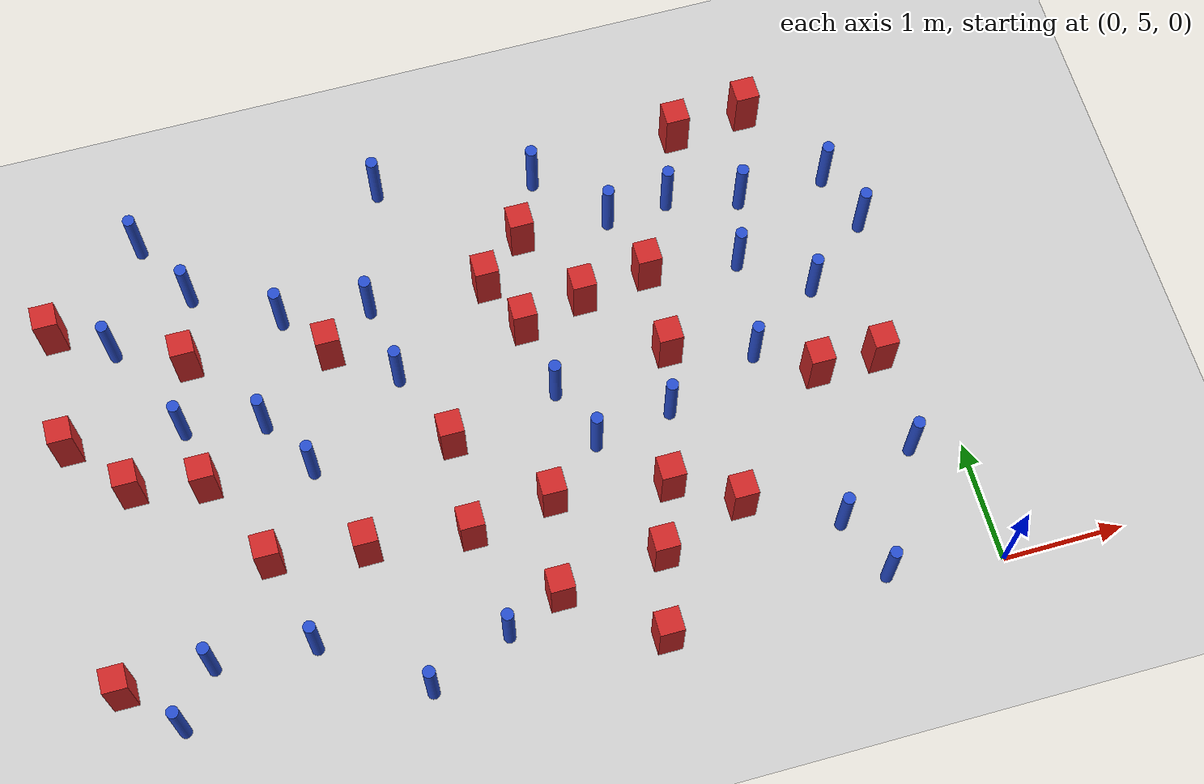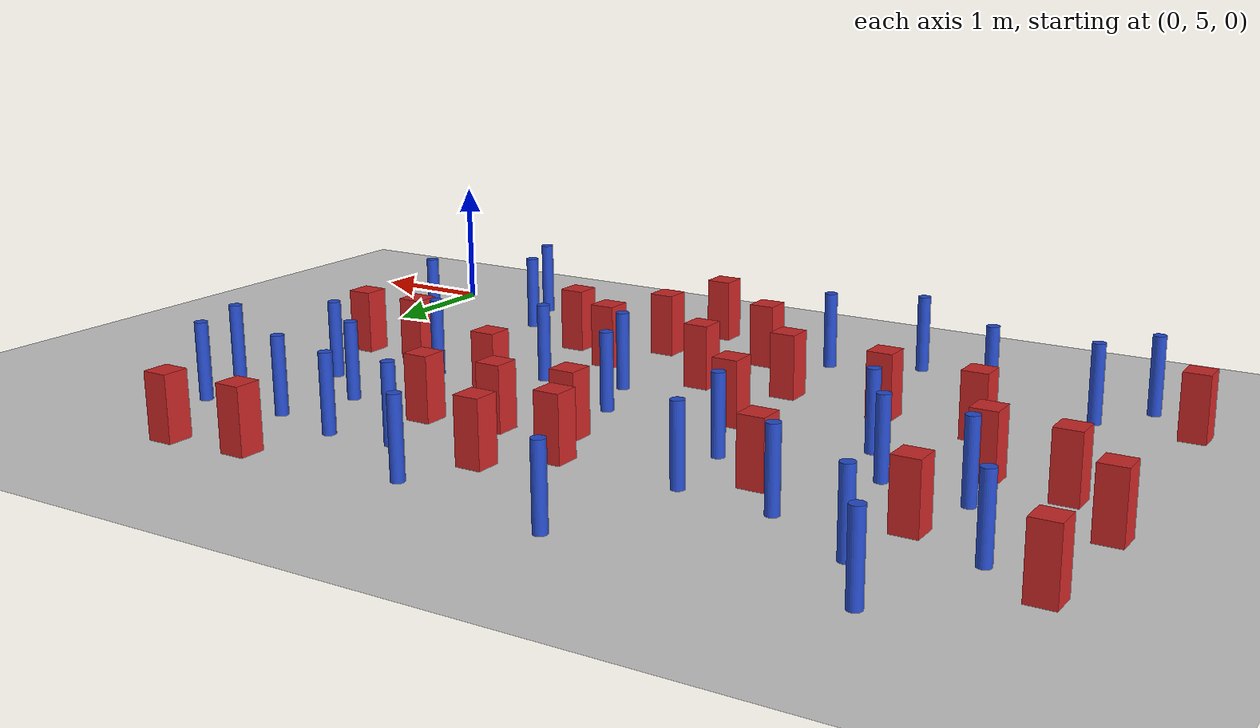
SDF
<sdf version="1.6">
 <world name="default">
  <model name="ground_plane">
   <static>1</static>
   <link name="link">
    <collision name="collision">
     <geometry><plane><normal>0 0 1</normal><size>100 100</size></plane></geometry>
     <surface><friction><ode><mu>100</mu><mu2>50</mu2></ode></friction></surface>
    </collision>
    <visual name="visual">
     <cast_shadows>0</cast_shadows>
     <geometry><plane><normal>0 0 1</normal><size>100 100</size></plane></geometry>
     <material>
      <ambient>1.0 1.0 1.0 1.0</ambient>
      <diffuse>0.8 0.8 0.8 1.0</diffuse>
      <specular>0.01 0.01 0.01 1.000000</specular>
     </material>
    </visual>
   </link>
  </model>
  <model name="square_post_obstacle1">
   <static>true</static>
   <pose>-5.60248485421 6.4889350293 1.91545236811e-07 -7.35059704564e-06 1.12565212e-07 2.39332434364e-05</pose>
   <link name="link">
    <pose>0 0 0.25 0 -0 0</pose>
    <inertial>
     <mass>100</mass>
     <inertia>
      <ixx>0.166667</ixx>
      <ixy>0</ixy>
      <ixz>0</ixz>
      <iyy>0.166667</iyy>
      <iyz>0</iyz>
      <izz>0.166667</izz>
     </inertia>
    </inertial>
    <collision name="collision"><geometry><box><size>.2 .2 .5</size></box></geometry></collision>
    <visual name="visual">
     <geometry><box><size>.2 .2 .5</size></box></geometry>
     <material>
      <script><name>Gazebo/Red</name><uri>file://media/materials/scripts/gazebo.material</uri></script>
     </material>
    </visual>
   </link>
  </model>
  <model name="pole_obstacle12">
   <static>true</static>
   <pose>-0.427760057197 6.07266517939 7.38925637345e-09 -8.471706928e-08 1.24976765079e-08 -1.74513093015e-07</pose>
   <link name="link">
    <pose>0 0 0.3 0 -0 0</pose>
    <inertial>
     <mass>1</mass>
     <inertia><ixx>0.145833</ixx><ixy>0</ixy><ixz>0</ixz><iyy>0.145833</iyy><iyz>0</iyz><izz>0.125</izz></inertia>
    </inertial>
    <collision name="collision">
     <geometry><cylinder><radius>0.05</radius><length>.6</length></cylinder></geometry>
    </collision>
    <visual name="visual">
     <geometry><cylinder><radius>0.05</radius><length>.6</length></cylinder></geometry>
     <material>
      <script><name>Gazebo/Blue</name><uri>file://media/materials/scripts/gazebo.material</uri></script>
     </material>
    </visual>
   </link>
  </model>
  <model name="square_post_obstacle27">
   <static>true</static>
   <pose>-3.32738703445 6.39974944797 1.91545236811e-07 -7.35059704564e-06 1.12565212e-07 2.39332434364e-05</pose>
   <link name="link">
    <pose>0 0 0.25 0 -0 0</pose>
    <inertial>
     <mass>100</mass>
     <inertia>
      <ixx>0.166667</ixx>
      <ixy>0</ixy>
      <ixz>0</ixz>
      <iyy>0.166667</iyy>
      <iyz>0</iyz>
      <izz>0.166667</izz>
     </inertia>
    </inertial>
    <collision name="collision"><geometry><box><size>.2 .2 .5</size></box></geometry></collision>
    <visual name="visual">
     <geometry><box><size>.2 .2 .5</size></box></geometry>
     <material>
      <script><name>Gazebo/Red</name><uri>file://media/materials/scripts/gazebo.material</uri></script>
     </material>
    </visual>
   </link>
  </model>
  <model name="pole_obstacle18">
   <static>true</static>
   <pose>-1.69189626377 8.75768709461 7.38925637345e-09 -8.47170692798e-08 1.24976764881e-08 -1.74513093027e-07</pose>
   <link name="link">
    <pose>0 0 0.3 0 -0 0</pose>
    <inertial>
     <mass>1</mass>
     <inertia><ixx>0.145833</ixx><ixy>0</ixy><ixz>0</ixz><iyy>0.145833</iyy><iyz>0</iyz><izz>0.125</izz></inertia>
    </inertial>
    <collision name="collision">
     <geometry><cylinder><radius>0.05</radius><length>.6</length></cylinder></geometry>
    </collision>
    <visual name="visual">
     <geometry><cylinder><radius>0.05</radius><length>.6</length></cylinder></geometry>
     <material>
      <script><name>Gazebo/Blue</name><uri>file://media/materials/scripts/gazebo.material</uri></script>
     </material>
    </visual>
   </link>
  </model>
  <model name="square_post_obstacle31">
   <static>true</static>
   <pose>-6.91362823804 5.74770904784 1.91545236811e-07 -7.35059704564e-06 1.12565212e-07 2.39332434364e-05</pose>
   <link name="link">
    <pose>0 0 0.25 0 -0 0</pose>
    <inertial>
     <mass>100</mass>
     <inertia>
      <ixx>0.166667</ixx>
      <ixy>0</ixy>
      <ixz>0</ixz>
      <iyy>0.166667</iyy>
      <iyz>0</iyz>
      <izz>0.166667</izz>
     </inertia>
    </inertial>
    <collision name="collision"><geometry><box><size>.2 .2 .5</size></box></geometry></collision>
    <visual name="visual">
     <geometry><box><size>.2 .2 .5</size></box></geometry>
     <material>
      <script><name>Gazebo/Red</name><uri>file://media/materials/scripts/gazebo.material</uri></script>
     </material>
    </visual>
   </link>
  </model>
  <model name="pole_obstacle24">
   <static>true</static>
   <pose>-5.39968292794 7.64356873733 7.38925637345e-09 -8.47170692796e-08 1.24976764786e-08 -1.74513093032e-07</pose>
   <link name="link">
    <pose>0 0 0.3 0 -0 0</pose>
    <inertial>
     <mass>1</mass>
     <inertia><ixx>0.145833</ixx><ixy>0</ixy><ixz>0</ixz><iyy>0.145833</iyy><iyz>0</iyz><izz>0.125</izz></inertia>
    </inertial>
    <collision name="collision">
     <geometry><cylinder><radius>0.05</radius><length>.6</length></cylinder></geometry>
    </collision>
    <visual name="visual">
     <geometry><cylinder><radius>0.05</radius><length>.6</length></cylinder></geometry>
     <material>
      <script><name>Gazebo/Blue</name><uri>file://media/materials/scripts/gazebo.material</uri></script>
     </material>
    </visual>
   </link>
  </model>
  <model name="pole_obstacle26">
   <static>true</static>
   <pose>-4.34834939182 8.43288641713 7.38925637345e-09 -8.471706928e-08 1.24976765081e-08 -1.74513093015e-07</pose>
   <link name="link">
    <pose>0 0 0.3 0 -0 0</pose>
    <inertial>
     <mass>1</mass>
     <inertia><ixx>0.145833</ixx><ixy>0</ixy><ixz>0</ixz><iyy>0.145833</iyy><iyz>0</iyz><izz>0.125</izz></inertia>
    </inertial>
    <collision name="collision">
     <geometry><cylinder><radius>0.05</radius><length>.6</length></cylinder></geometry>
    </collision>
    <visual name="visual">
     <geometry><cylinder><radius>0.05</radius><length>.6</length></cylinder></geometry>
     <material>
      <script><name>Gazebo/Blue</name><uri>file://media/materials/scripts/gazebo.material</uri></script>
     </material>
    </visual>
   </link>
  </model>
  <model name="square_post_obstacle36">
   <static>true</static>
   <pose>-2.07902770897 7.41287740161 1.91545236811e-07 -7.35059704564e-06 1.12565212e-07 2.39332434364e-05</pose>
   <link name="link">
    <pose>0 0 0.25 0 -0 0</pose>
    <inertial>
     <mass>100</mass>
     <inertia>
      <ixx>0.166667</ixx>
      <ixy>0</ixy>
      <ixz>0</ixz>
      <iyy>0.166667</iyy>
      <iyz>0</iyz>
      <izz>0.166667</izz>
     </inertia>
    </inertial>
    <collision name="collision"><geometry><box><size>.2 .2 .5</size></box></geometry></collision>
    <visual name="visual">
     <geometry><box><size>.2 .2 .5</size></box></geometry>
     <material>
      <script><name>Gazebo/Red</name><uri>file://media/materials/scripts/gazebo.material</uri></script>
     </material>
    </visual>
   </link>
  </model>
  <model name="square_post_obstacle55">
   <static>true</static>
   <pose>-4.75509551866 8.12704016325 1.91545236811e-07 -7.35059704564e-06 1.12565212e-07 2.39332434364e-05</pose>
   <link name="link">
    <pose>0 0 0.25 0 -0 0</pose>
    <inertial>
     <mass>100</mass>
     <inertia>
      <ixx>0.166667</ixx>
      <ixy>0</ixy>
      <ixz>0</ixz>
      <iyy>0.166667</iyy>
      <iyz>0</iyz>
      <izz>0.166667</izz>
     </inertia>
    </inertial>
    <collision name="collision"><geometry><box><size>.2 .2 .5</size></box></geometry></collision>
    <visual name="visual">
     <geometry><box><size>.2 .2 .5</size></box></geometry>
     <material>
      <script><name>Gazebo/Red</name><uri>file://media/materials/scripts/gazebo.material</uri></script>
     </material>
    </visual>
   </link>
  </model>
  <model name="pole_obstacle53">
   <static>true</static>
   <pose>-4.26027337392 7.76566736631 7.38925637345e-09 -8.47170692796e-08 1.24976764786e-08 -1.74513093032e-07</pose>
   <link name="link">
    <pose>0 0 0.3 0 -0 0</pose>
    <inertial>
     <mass>1</mass>
     <inertia><ixx>0.145833</ixx><ixy>0</ixy><ixz>0</ixz><iyy>0.145833</iyy><iyz>0</iyz><izz>0.125</izz></inertia>
    </inertial>
    <collision name="collision">
     <geometry><cylinder><radius>0.05</radius><length>.6</length></cylinder></geometry>
    </collision>
    <visual name="visual">
     <geometry><cylinder><radius>0.05</radius><length>.6</length></cylinder></geometry>
     <material>
      <script><name>Gazebo/Blue</name><uri>file://media/materials/scripts/gazebo.material</uri></script>
     </material>
    </visual>
   </link>
  </model>
  <model name="pole_obstacle54">
   <static>true</static>
   <pose>-1.27567156155 8.04483895308 7.38925637345e-09 -8.471706928e-08 1.24976765113e-08 -1.74513093014e-07</pose>
   <link name="link">
    <pose>0 0 0.3 0 -0 0</pose>
    <inertial>
     <mass>1</mass>
     <inertia><ixx>0.145833</ixx><ixy>0</ixy><ixz>0</ixz><iyy>0.145833</iyy><iyz>0</iyz><izz>0.125</izz></inertia>
    </inertial>
    <collision name="collision">
     <geometry><cylinder><radius>0.05</radius><length>.6</length></cylinder></geometry>
    </collision>
    <visual name="visual">
     <geometry><cylinder><radius>0.05</radius><length>.6</length></cylinder></geometry>
     <material>
      <script><name>Gazebo/Blue</name><uri>file://media/materials/scripts/gazebo.material</uri></script>
     </material>
    </visual>
   </link>
  </model>
  <model name="square_post_obstacle58">
   <static>true</static>
   <pose>-4.84282711042 6.38325821089 1.91545236811e-07 -7.35059704564e-06 1.12565212e-07 2.39332434364e-05</pose>
   <link name="link">
    <pose>0 0 0.25 0 -0 0</pose>
    <inertial>
     <mass>100</mass>
     <inertia>
      <ixx>0.166667</ixx>
      <ixy>0</ixy>
      <ixz>0</ixz>
      <iyy>0.166667</iyy>
      <iyz>0</iyz>
      <izz>0.166667</izz>
     </inertia>
    </inertial>
    <collision name="collision"><geometry><box><size>.2 .2 .5</size></box></geometry></collision>
    <visual name="visual">
     <geometry><box><size>.2 .2 .5</size></box></geometry>
     <material>
      <script><name>Gazebo/Red</name><uri>file://media/materials/scripts/gazebo.material</uri></script>
     </material>
    </visual>
   </link>
  </model>
  <model name="square_post_obstacle59">
   <static>true</static>
   <pose>-2.04752439866 8.13906942535 1.91545236811e-07 -7.35059704564e-06 1.12565212e-07 2.39332434364e-05</pose>
   <link name="link">
    <pose>0 0 0.25 0 -0 0</pose>
    <inertial>
     <mass>100</mass>
     <inertia>
      <ixx>0.166667</ixx>
      <ixy>0</ixy>
      <ixz>0</ixz>
      <iyy>0.166667</iyy>
      <iyz>0</iyz>
      <izz>0.166667</izz>
     </inertia>
    </inertial>
    <collision name="collision"><geometry><box><size>.2 .2 .5</size></box></geometry></collision>
    <visual name="visual">
     <geometry><box><size>.2 .2 .5</size></box></geometry>
     <material>
      <script><name>Gazebo/Red</name><uri>file://media/materials/scripts/gazebo.material</uri></script>
     </material>
    </visual>
   </link>
  </model>
  <model name="pole_obstacle58">
   <static>true</static>
   <pose>-0.340174397865 8.62552446745 7.38925637345e-09 -8.47170692796e-08 1.24976764724e-08 -1.74513093036e-07</pose>
   <link name="link">
    <pose>0 0 0.3 0 -0 0</pose>
    <inertial>
     <mass>1</mass>
     <inertia><ixx>0.145833</ixx><ixy>0</ixy><ixz>0</ixz><iyy>0.145833</iyy><iyz>0</iyz><izz>0.125</izz></inertia>
    </inertial>
    <collision name="collision">
     <geometry><cylinder><radius>0.05</radius><length>.6</length></cylinder></geometry>
    </collision>
    <visual name="visual">
     <geometry><cylinder><radius>0.05</radius><length>.6</length></cylinder></geometry>
     <material>
      <script><name>Gazebo/Blue</name><uri>file://media/materials/scripts/gazebo.material</uri></script>
     </material>
    </visual>
   </link>
  </model>
  <model name="square_post_obstacle66">
   <static>true</static>
   <pose>-3.97820643613 7.09241643333 1.91545236811e-07 -7.35059704564e-06 1.12565212e-07 2.39332434364e-05</pose>
   <link name="link">
    <pose>0 0 0.25 0 -0 0</pose>
    <inertial>
     <mass>100</mass>
     <inertia>
      <ixx>0.166667</ixx>
      <ixy>0</ixy>
      <ixz>0</ixz>
      <iyy>0.166667</iyy>
      <iyz>0</iyz>
      <izz>0.166667</izz>
     </inertia>
    </inertial>
    <collision name="collision"><geometry><box><size>.2 .2 .5</size></box></geometry></collision>
    <visual name="visual">
     <geometry><box><size>.2 .2 .5</size></box></geometry>
     <material>
      <script><name>Gazebo/Red</name><uri>file://media/materials/scripts/gazebo.material</uri></script>
     </material>
    </visual>
   </link>
  </model>
  <model name="pole_obstacle64">
   <static>true</static>
   <pose>-5.10982453255 7.15654743907 7.38925637345e-09 -8.47170692796e-08 1.24976764786e-08 -1.74513093032e-07</pose>
   <link name="link">
    <pose>0 0 0.3 0 -0 0</pose>
    <inertial>
     <mass>1</mass>
     <inertia><ixx>0.145833</ixx><ixy>0</ixy><ixz>0</ixz><iyy>0.145833</iyy><iyz>0</iyz><izz>0.125</izz></inertia>
    </inertial>
    <collision name="collision">
     <geometry><cylinder><radius>0.05</radius><length>.6</length></cylinder></geometry>
    </collision>
    <visual name="visual">
     <geometry><cylinder><radius>0.05</radius><length>.6</length></cylinder></geometry>
     <material>
      <script><name>Gazebo/Blue</name><uri>file://media/materials/scripts/gazebo.material</uri></script>
     </material>
    </visual>
   </link>
  </model>
  <model name="pole_obstacle85">
   <static>true</static>
   <pose>-3.93834225015 5.41478898075 7.38925637345e-09 -8.47170692798e-08 1.24976765033e-08 -1.74513093019e-07</pose>
   <link name="link">
    <pose>0 0 0.3 0 -0 0</pose>
    <inertial>
     <mass>1</mass>
     <inertia><ixx>0.145833</ixx><ixy>0</ixy><ixz>0</ixz><iyy>0.145833</iyy><iyz>0</iyz><izz>0.125</izz></inertia>
    </inertial>
    <collision name="collision">
     <geometry><cylinder><radius>0.05</radius><length>.6</length></cylinder></geometry>
    </collision>
    <visual name="visual">
     <geometry><cylinder><radius>0.05</radius><length>.6</length></cylinder></geometry>
     <material>
      <script><name>Gazebo/Blue</name><uri>file://media/materials/scripts/gazebo.material</uri></script>
     </material>
    </visual>
   </link>
  </model>
  <model name="pole_obstacle86">
   <static>true</static>
   <pose>-4.04289445391 9.49285223377 7.38925637345e-09 -8.47170692799e-08 1.24976765075e-08 -1.74513093015e-07</pose>
   <link name="link">
    <pose>0 0 0.3 0 -0 0</pose>
    <inertial>
     <mass>1</mass>
     <inertia><ixx>0.145833</ixx><ixy>0</ixy><ixz>0</ixz><iyy>0.145833</iyy><iyz>0</iyz><izz>0.125</izz></inertia>
    </inertial>
    <collision name="collision">
     <geometry><cylinder><radius>0.05</radius><length>.6</length></cylinder></geometry>
    </collision>
    <visual name="visual">
     <geometry><cylinder><radius>0.05</radius><length>.6</length></cylinder></geometry>
     <material>
      <script><name>Gazebo/Blue</name><uri>file://media/materials/scripts/gazebo.material</uri></script>
     </material>
    </visual>
   </link>
  </model>
  <model name="pole_obstacle91">
   <static>true</static>
   <pose>-0.74915278797 7.6487773583 7.38925637345e-09 -8.471706928e-08 1.24976765086e-08 -1.74513093015e-07</pose>
   <link name="link">
    <pose>0 0 0.3 0 -0 0</pose>
    <inertial>
     <mass>1</mass>
     <inertia><ixx>0.145833</ixx><ixy>0</ixy><ixz>0</ixz><iyy>0.145833</iyy><iyz>0</iyz><izz>0.125</izz></inertia>
    </inertial>
    <collision name="collision">
     <geometry><cylinder><radius>0.05</radius><length>.6</length></cylinder></geometry>
    </collision>
    <visual name="visual">
     <geometry><cylinder><radius>0.05</radius><length>.6</length></cylinder></geometry>
     <material>
      <script><name>Gazebo/Blue</name><uri>file://media/materials/scripts/gazebo.material</uri></script>
     </material>
    </visual>
   </link>
  </model>
  <model name="square_post_obstacle87">
   <static>true</static>
   <pose>-0.42189057067 6.90745425906 1.91545236811e-07 -7.35059704564e-06 1.12565212e-07 2.39332434364e-05</pose>
   <link name="link">
    <pose>0 0 0.25 0 -0 0</pose>
    <inertial>
     <mass>100</mass>
     <inertia>
      <ixx>0.166667</ixx>
      <ixy>0</ixy>
      <ixz>0</ixz>
      <iyy>0.166667</iyy>
      <iyz>0</iyz>
      <izz>0.166667</izz>
     </inertia>
    </inertial>
    <collision name="collision"><geometry><box><size>.2 .2 .5</size></box></geometry></collision>
    <visual name="visual">
     <geometry><box><size>.2 .2 .5</size></box></geometry>
     <material>
      <script><name>Gazebo/Red</name><uri>file://media/materials/scripts/gazebo.material</uri></script>
     </material>
    </visual>
   </link>
  </model>
  <model name="pole_obstacle99">
   <static>true</static>
   <pose>-6.04704103954 7.7651824316 7.38925637345e-09 -8.47170692796e-08 1.24976764786e-08 -1.74513093032e-07</pose>
   <link name="link">
    <pose>0 0 0.3 0 -0 0</pose>
    <inertial>
     <mass>1</mass>
     <inertia><ixx>0.145833</ixx><ixy>0</ixy><ixz>0</ixz><iyy>0.145833</iyy><iyz>0</iyz><izz>0.125</izz></inertia>
    </inertial>
    <collision name="collision">
     <geometry><cylinder><radius>0.05</radius><length>.6</length></cylinder></geometry>
    </collision>
    <visual name="visual">
     <geometry><cylinder><radius>0.05</radius><length>.6</length></cylinder></geometry>
     <material>
      <script><name>Gazebo/Blue</name><uri>file://media/materials/scripts/gazebo.material</uri></script>
     </material>
    </visual>
   </link>
  </model>
  <model name="pole_obstacle105">
   <static>true</static>
   <pose>-1.39558169618 7.19960357943 7.38925637345e-09 -8.47170692799e-08 1.24976765033e-08 -1.74513093018e-07</pose>
   <link name="link">
    <pose>0 0 0.3 0 -0 0</pose>
    <inertial>
     <mass>1</mass>
     <inertia><ixx>0.145833</ixx><ixy>0</ixy><ixz>0</ixz><iyy>0.145833</iyy><iyz>0</iyz><izz>0.125</izz></inertia>
    </inertial>
    <collision name="collision">
     <geometry><cylinder><radius>0.05</radius><length>.6</length></cylinder></geometry>
    </collision>
    <visual name="visual">
     <geometry><cylinder><radius>0.05</radius><length>.6</length></cylinder></geometry>
     <material>
      <script><name>Gazebo/Blue</name><uri>file://media/materials/scripts/gazebo.material</uri></script>
     </material>
    </visual>
   </link>
  </model>
  <model name="square_post_obstacle95">
   <static>true</static>
   <pose>-3.16288987507 7.92479970555 1.91545236811e-07 -7.35059704564e-06 1.12565212e-07 2.39332434364e-05</pose>
   <link name="link">
    <pose>0 0 0.25 0 -0 0</pose>
    <inertial>
     <mass>100</mass>
     <inertia>
      <ixx>0.166667</ixx>
      <ixy>0</ixy>
      <ixz>0</ixz>
      <iyy>0.166667</iyy>
      <iyz>0</iyz>
      <izz>0.166667</izz>
     </inertia>
    </inertial>
    <collision name="collision"><geometry><box><size>.2 .2 .5</size></box></geometry></collision>
    <visual name="visual">
     <geometry><box><size>.2 .2 .5</size></box></geometry>
     <material>
      <script><name>Gazebo/Red</name><uri>file://media/materials/scripts/gazebo.material</uri></script>
     </material>
    </visual>
   </link>
  </model>
  <model name="pole_obstacle110">
   <static>true</static>
   <pose>-5.40057696053 5.71518405705 7.38925637345e-09 -8.47170692796e-08 1.24976764786e-08 -1.74513093032e-07</pose>
   <link name="link">
    <pose>0 0 0.3 0 -0 0</pose>
    <inertial>
     <mass>1</mass>
     <inertia><ixx>0.145833</ixx><ixy>0</ixy><ixz>0</ixz><iyy>0.145833</iyy><iyz>0</iyz><izz>0.125</izz></inertia>
    </inertial>
    <collision name="collision">
     <geometry><cylinder><radius>0.05</radius><length>.6</length></cylinder></geometry>
    </collision>
    <visual name="visual">
     <geometry><cylinder><radius>0.05</radius><length>.6</length></cylinder></geometry>
     <material>
      <script><name>Gazebo/Blue</name><uri>file://media/materials/scripts/gazebo.material</uri></script>
     </material>
    </visual>
   </link>
  </model>
  <model name="pole_obstacle111">
   <static>true</static>
   <pose>-6.46591831075 8.60046155696 7.38925637345e-09 -8.471706928e-08 1.24976765081e-08 -1.74513093015e-07</pose>
   <link name="link">
    <pose>0 0 0.3 0 -0 0</pose>
    <inertial>
     <mass>1</mass>
     <inertia><ixx>0.145833</ixx><ixy>0</ixy><ixz>0</ixz><iyy>0.145833</iyy><iyz>0</iyz><izz>0.125</izz></inertia>
    </inertial>
    <collision name="collision">
     <geometry><cylinder><radius>0.05</radius><length>.6</length></cylinder></geometry>
    </collision>
    <visual name="visual">
     <geometry><cylinder><radius>0.05</radius><length>.6</length></cylinder></geometry>
     <material>
      <script><name>Gazebo/Blue</name><uri>file://media/materials/scripts/gazebo.material</uri></script>
     </material>
    </visual>
   </link>
  </model>
  <model name="pole_obstacle112">
   <static>true</static>
   <pose>-2.85629156292 6.78085455023 7.38925637345e-09 -8.47170692798e-08 1.24976765033e-08 -1.74513093019e-07</pose>
   <link name="link">
    <pose>0 0 0.3 0 -0 0</pose>
    <inertial>
     <mass>1</mass>
     <inertia><ixx>0.145833</ixx><ixy>0</ixy><ixz>0</ixz><iyy>0.145833</iyy><iyz>0</iyz><izz>0.125</izz></inertia>
    </inertial>
    <collision name="collision">
     <geometry><cylinder><radius>0.05</radius><length>.6</length></cylinder></geometry>
    </collision>
    <visual name="visual">
     <geometry><cylinder><radius>0.05</radius><length>.6</length></cylinder></geometry>
     <material>
      <script><name>Gazebo/Blue</name><uri>file://media/materials/scripts/gazebo.material</uri></script>
     </material>
    </visual>
   </link>
  </model>
  <model name="square_post_obstacle111">
   <static>true</static>
   <pose>-0.820560120239 9.40406172655 1.91545236811e-07 -7.35059704564e-06 1.12565212e-07 2.39332434364e-05</pose>
   <link name="link">
    <pose>0 0 0.25 0 -0 0</pose>
    <inertial>
     <mass>100</mass>
     <inertia>
      <ixx>0.166667</ixx>
      <ixy>0</ixy>
      <ixz>0</ixz>
      <iyy>0.166667</iyy>
      <iyz>0</iyz>
      <izz>0.166667</izz>
     </inertia>
    </inertial>
    <collision name="collision"><geometry><box><size>.2 .2 .5</size></box></geometry></collision>
    <visual name="visual">
     <geometry><box><size>.2 .2 .5</size></box></geometry>
     <material>
      <script><name>Gazebo/Red</name><uri>file://media/materials/scripts/gazebo.material</uri></script>
     </material>
    </visual>
   </link>
  </model>
  <model name="square_post_obstacle112">
   <static>true</static>
   <pose>-3.47300004983 5.61609856492 1.91545236811e-07 -7.35059704564e-06 1.12565212e-07 2.39332434364e-05</pose>
   <link name="link">
    <pose>0 0 0.25 0 -0 0</pose>
    <inertial>
     <mass>100</mass>
     <inertia>
      <ixx>0.166667</ixx>
      <ixy>0</ixy>
      <ixz>0</ixz>
      <iyy>0.166667</iyy>
      <iyz>0</iyz>
      <izz>0.166667</izz>
     </inertia>
    </inertial>
    <collision name="collision"><geometry><box><size>.2 .2 .5</size></box></geometry></collision>
    <visual name="visual">
     <geometry><box><size>.2 .2 .5</size></box></geometry>
     <material>
      <script><name>Gazebo/Red</name><uri>file://media/materials/scripts/gazebo.material</uri></script>
     </material>
    </visual>
   </link>
  </model>
  <model name="pole_obstacle127">
   <static>true</static>
   <pose>-1.09092793377 8.60650935197 7.38925637345e-09 -8.47170692798e-08 1.24976764881e-08 -1.74513093027e-07</pose>
   <link name="link">
    <pose>0 0 0.3 0 -0 0</pose>
    <inertial>
     <mass>1</mass>
     <inertia><ixx>0.145833</ixx><ixy>0</ixy><ixz>0</ixz><iyy>0.145833</iyy><iyz>0</iyz><izz>0.125</izz></inertia>
    </inertial>
    <collision name="collision">
     <geometry><cylinder><radius>0.05</radius><length>.6</length></cylinder></geometry>
    </collision>
    <visual name="visual">
     <geometry><cylinder><radius>0.05</radius><length>.6</length></cylinder></geometry>
     <material>
      <script><name>Gazebo/Blue</name><uri>file://media/materials/scripts/gazebo.material</uri></script>
     </material>
    </visual>
   </link>
  </model>
  <model name="pole_obstacle133">
   <static>true</static>
   <pose>-2.21920114828 8.7143956956 7.38925637345e-09 -8.47170692793e-08 1.24976764408e-08 -1.74513093041e-07</pose>
   <link name="link">
    <pose>0 0 0.3 0 -0 0</pose>
    <inertial>
     <mass>1</mass>
     <inertia><ixx>0.145833</ixx><ixy>0</ixy><ixz>0</ixz><iyy>0.145833</iyy><iyz>0</iyz><izz>0.125</izz></inertia>
    </inertial>
    <collision name="collision">
     <geometry><cylinder><radius>0.05</radius><length>.6</length></cylinder></geometry>
    </collision>
    <visual name="visual">
     <geometry><cylinder><radius>0.05</radius><length>.6</length></cylinder></geometry>
     <material>
      <script><name>Gazebo/Blue</name><uri>file://media/materials/scripts/gazebo.material</uri></script>
     </material>
    </visual>
   </link>
  </model>
  <model name="pole_obstacle140">
   <static>true</static>
   <pose>-6.08486094168 9.48999888682 7.38925637345e-09 -8.471706928e-08 1.24976765081e-08 -1.74513093015e-07</pose>
   <link name="link">
    <pose>0 0 0.3 0 -0 0</pose>
    <inertial>
     <mass>1</mass>
     <inertia><ixx>0.145833</ixx><ixy>0</ixy><ixz>0</ixz><iyy>0.145833</iyy><iyz>0</iyz><izz>0.125</izz></inertia>
    </inertial>
    <collision name="collision">
     <geometry><cylinder><radius>0.05</radius><length>.6</length></cylinder></geometry>
    </collision>
    <visual name="visual">
     <geometry><cylinder><radius>0.05</radius><length>.6</length></cylinder></geometry>
     <material>
      <script><name>Gazebo/Blue</name><uri>file://media/materials/scripts/gazebo.material</uri></script>
     </material>
    </visual>
   </link>
  </model>
  <model name="pole_obstacle141">
   <static>true</static>
   <pose>-2.73648134021 9.24734309736 7.38925637345e-09 -8.47170692793e-08 1.24976764408e-08 -1.74513093041e-07</pose>
   <link name="link">
    <pose>0 0 0.3 0 -0 0</pose>
    <inertial>
     <mass>1</mass>
     <inertia><ixx>0.145833</ixx><ixy>0</ixy><ixz>0</ixz><iyy>0.145833</iyy><iyz>0</iyz><izz>0.125</izz></inertia>
    </inertial>
    <collision name="collision">
     <geometry><cylinder><radius>0.05</radius><length>.6</length></cylinder></geometry>
    </collision>
    <visual name="visual">
     <geometry><cylinder><radius>0.05</radius><length>.6</length></cylinder></geometry>
     <material>
      <script><name>Gazebo/Blue</name><uri>file://media/materials/scripts/gazebo.material</uri></script>
     </material>
    </visual>
   </link>
  </model>
  <model name="square_post_obstacle127">
   <static>true</static>
   <pose>-2.62624116251 8.0561806793 1.91545236811e-07 -7.35059704564e-06 1.12565212e-07 2.39332434364e-05</pose>
   <link name="link">
    <pose>0 0 0.25 0 -0 0</pose>
    <inertial>
     <mass>100</mass>
     <inertia>
      <ixx>0.166667</ixx>
      <ixy>0</ixy>
      <ixz>0</ixz>
      <iyy>0.166667</iyy>
      <iyz>0</iyz>
      <izz>0.166667</izz>
     </inertia>
    </inertial>
    <collision name="collision"><geometry><box><size>.2 .2 .5</size></box></geometry></collision>
    <visual name="visual">
     <geometry><box><size>.2 .2 .5</size></box></geometry>
     <material>
      <script><name>Gazebo/Red</name><uri>file://media/materials/scripts/gazebo.material</uri></script>
     </material>
    </visual>
   </link>
  </model>
  <model name="pole_obstacle142">
   <static>true</static>
   <pose>-4.61514318581 5.13693983503 7.38925637345e-09 -8.47170692796e-08 1.24976764786e-08 -1.74513093032e-07</pose>
   <link name="link">
    <pose>0 0 0.3 0 -0 0</pose>
    <inertial>
     <mass>1</mass>
     <inertia><ixx>0.145833</ixx><ixy>0</ixy><ixz>0</ixz><iyy>0.145833</iyy><iyz>0</iyz><izz>0.125</izz></inertia>
    </inertial>
    <collision name="collision">
     <geometry><cylinder><radius>0.05</radius><length>.6</length></cylinder></geometry>
    </collision>
    <visual name="visual">
     <geometry><cylinder><radius>0.05</radius><length>.6</length></cylinder></geometry>
     <material>
      <script><name>Gazebo/Blue</name><uri>file://media/materials/scripts/gazebo.material</uri></script>
     </material>
    </visual>
   </link>
  </model>
  <model name="square_post_obstacle137">
   <static>true</static>
   <pose>-2.76406469975 5.06704210199 1.91545236811e-07 -7.35059704564e-06 1.12565212e-07 2.39332434364e-05</pose>
   <link name="link">
    <pose>0 0 0.25 0 -0 0</pose>
    <inertial>
     <mass>100</mass>
     <inertia>
      <ixx>0.166667</ixx>
      <ixy>0</ixy>
      <ixz>0</ixz>
      <iyy>0.166667</iyy>
      <iyz>0</iyz>
      <izz>0.166667</izz>
     </inertia>
    </inertial>
    <collision name="collision"><geometry><box><size>.2 .2 .5</size></box></geometry></collision>
    <visual name="visual">
     <geometry><box><size>.2 .2 .5</size></box></geometry>
     <material>
      <script><name>Gazebo/Red</name><uri>file://media/materials/scripts/gazebo.material</uri></script>
     </material>
    </visual>
   </link>
  </model>
  <model name="square_post_obstacle142">
   <static>true</static>
   <pose>-6.9192399479 8.87030365187 1.91545236811e-07 -7.35059704564e-06 1.12565212e-07 2.39332434364e-05</pose>
   <link name="link">
    <pose>0 0 0.25 0 -0 0</pose>
    <inertial>
     <mass>100</mass>
     <inertia>
      <ixx>0.166667</ixx>
      <ixy>0</ixy>
      <ixz>0</ixz>
      <iyy>0.166667</iyy>
      <iyz>0</iyz>
      <izz>0.166667</izz>
     </inertia>
    </inertial>
    <collision name="collision"><geometry><box><size>.2 .2 .5</size></box></geometry></collision>
    <visual name="visual">
     <geometry><box><size>.2 .2 .5</size></box></geometry>
     <material>
      <script><name>Gazebo/Red</name><uri>file://media/materials/scripts/gazebo.material</uri></script>
     </material>
    </visual>
   </link>
  </model>
  <model name="square_post_obstacle145">
   <static>true</static>
   <pose>-3.36398894625 8.38397018484 1.91545236811e-07 -7.35059704564e-06 1.12565212e-07 2.39332434364e-05</pose>
   <link name="link">
    <pose>0 0 0.25 0 -0 0</pose>
    <inertial>
     <mass>100</mass>
     <inertia>
      <ixx>0.166667</ixx>
      <ixy>0</ixy>
      <ixz>0</ixz>
      <iyy>0.166667</iyy>
      <iyz>0</iyz>
      <izz>0.166667</izz>
     </inertia>
    </inertial>
    <collision name="collision"><geometry><box><size>.2 .2 .5</size></box></geometry></collision>
    <visual name="visual">
     <geometry><box><size>.2 .2 .5</size></box></geometry>
     <material>
      <script><name>Gazebo/Red</name><uri>file://media/materials/scripts/gazebo.material</uri></script>
     </material>
    </visual>
   </link>
  </model>
  <model name="square_post_obstacle151">
   <static>true</static>
   <pose>-5.89900465274 8.33721636676 1.91545236811e-07 -7.35059704564e-06 1.12565212e-07 2.39332434364e-05</pose>
   <link name="link">
    <pose>0 0 0.25 0 -0 0</pose>
    <inertial>
     <mass>100</mass>
     <inertia>
      <ixx>0.166667</ixx>
      <ixy>0</ixy>
      <ixz>0</ixz>
      <iyy>0.166667</iyy>
      <iyz>0</iyz>
      <izz>0.166667</izz>
     </inertia>
    </inertial>
    <collision name="collision"><geometry><box><size>.2 .2 .5</size></box></geometry></collision>
    <visual name="visual">
     <geometry><box><size>.2 .2 .5</size></box></geometry>
     <material>
      <script><name>Gazebo/Red</name><uri>file://media/materials/scripts/gazebo.material</uri></script>
     </material>
    </visual>
   </link>
  </model>
  <model name="square_post_obstacle155">
   <static>true</static>
   <pose>-1.89010364415 5.97583978861 1.91545236811e-07 -7.35059704564e-06 1.12565212e-07 2.39332434364e-05</pose>
   <link name="link">
    <pose>0 0 0.25 0 -0 0</pose>
    <inertial>
     <mass>100</mass>
     <inertia>
      <ixx>0.166667</ixx>
      <ixy>0</ixy>
      <ixz>0</ixz>
      <iyy>0.166667</iyy>
      <iyz>0</iyz>
      <izz>0.166667</izz>
     </inertia>
    </inertial>
    <collision name="collision"><geometry><box><size>.2 .2 .5</size></box></geometry></collision>
    <visual name="visual">
     <geometry><box><size>.2 .2 .5</size></box></geometry>
     <material>
      <script><name>Gazebo/Red</name><uri>file://media/materials/scripts/gazebo.material</uri></script>
     </material>
    </visual>
   </link>
  </model>
  <model name="square_post_obstacle156">
   <static>true</static>
   <pose>-6.54459433333 7.3606556429 1.91545236811e-07 -7.35059704564e-06 1.12565212e-07 2.39332434364e-05</pose>
   <link name="link">
    <pose>0 0 0.25 0 -0 0</pose>
    <inertial>
     <mass>100</mass>
     <inertia>
      <ixx>0.166667</ixx>
      <ixy>0</ixy>
      <ixz>0</ixz>
      <iyy>0.166667</iyy>
      <iyz>0</iyz>
      <izz>0.166667</izz>
     </inertia>
    </inertial>
    <collision name="collision"><geometry><box><size>.2 .2 .5</size></box></geometry></collision>
    <visual name="visual">
     <geometry><box><size>.2 .2 .5</size></box></geometry>
     <material>
      <script><name>Gazebo/Red</name><uri>file://media/materials/scripts/gazebo.material</uri></script>
     </material>
    </visual>
   </link>
  </model>
  <model name="square_post_obstacle157">
   <static>true</static>
   <pose>-2.39245135075 6.27651341358 1.91545236811e-07 -7.35059704564e-06 1.12565212e-07 2.39332434364e-05</pose>
   <link name="link">
    <pose>0 0 0.25 0 -0 0</pose>
    <inertial>
     <mass>100</mass>
     <inertia>
      <ixx>0.166667</ixx>
      <ixy>0</ixy>
      <ixz>0</ixz>
      <iyy>0.166667</iyy>
      <iyz>0</iyz>
      <izz>0.166667</izz>
     </inertia>
    </inertial>
    <collision name="collision"><geometry><box><size>.2 .2 .5</size></box></geometry></collision>
    <visual name="visual">
     <geometry><box><size>.2 .2 .5</size></box></geometry>
     <material>
      <script><name>Gazebo/Red</name><uri>file://media/materials/scripts/gazebo.material</uri></script>
     </material>
    </visual>
   </link>
  </model>
  <model name="square_post_obstacle160">
   <static>true</static>
   <pose>-1.45238530407 9.35127294433 1.91545236811e-07 -7.35059704564e-06 1.12565212e-07 2.39332434364e-05</pose>
   <link name="link">
    <pose>0 0 0.25 0 -0 0</pose>
    <inertial>
     <mass>100</mass>
     <inertia>
      <ixx>0.166667</ixx>
      <ixy>0</ixy>
      <ixz>0</ixz>
      <iyy>0.166667</iyy>
      <iyz>0</iyz>
      <izz>0.166667</izz>
     </inertia>
    </inertial>
    <collision name="collision"><geometry><box><size>.2 .2 .5</size></box></geometry></collision>
    <visual name="visual">
     <geometry><box><size>.2 .2 .5</size></box></geometry>
     <material>
      <script><name>Gazebo/Red</name><uri>file://media/materials/scripts/gazebo.material</uri></script>
     </material>
    </visual>
   </link>
  </model>
  <model name="pole_obstacle174">
   <static>true</static>
   <pose>-6.51658262577 5.34380450738 7.38925637345e-09 -8.47170692796e-08 1.24976764786e-08 -1.74513093032e-07</pose>
   <link name="link">
    <pose>0 0 0.3 0 -0 0</pose>
    <inertial>
     <mass>1</mass>
     <inertia><ixx>0.145833</ixx><ixy>0</ixy><ixz>0</ixz><iyy>0.145833</iyy><iyz>0</iyz><izz>0.125</izz></inertia>
    </inertial>
    <collision name="collision">
     <geometry><cylinder><radius>0.05</radius><length>.6</length></cylinder></geometry>
    </collision>
    <visual name="visual">
     <geometry><cylinder><radius>0.05</radius><length>.6</length></cylinder></geometry>
     <material>
      <script><name>Gazebo/Blue</name><uri>file://media/materials/scripts/gazebo.material</uri></script>
     </material>
    </visual>
   </link>
  </model>
  <model name="pole_obstacle177">
   <static>true</static>
   <pose>-5.07653088473 8.52328278828 7.38925637345e-09 -8.471706928e-08 1.24976765081e-08 -1.74513093015e-07</pose>
   <link name="link">
    <pose>0 0 0.3 0 -0 0</pose>
    <inertial>
     <mass>1</mass>
     <inertia><ixx>0.145833</ixx><ixy>0</ixy><ixz>0</ixz><iyy>0.145833</iyy><iyz>0</iyz><izz>0.125</izz></inertia>
    </inertial>
    <collision name="collision">
     <geometry><cylinder><radius>0.05</radius><length>.6</length></cylinder></geometry>
    </collision>
    <visual name="visual">
     <geometry><cylinder><radius>0.05</radius><length>.6</length></cylinder></geometry>
     <material>
      <script><name>Gazebo/Blue</name><uri>file://media/materials/scripts/gazebo.material</uri></script>
     </material>
    </visual>
   </link>
  </model>
  <model name="square_post_obstacle166">
   <static>true</static>
   <pose>-2.97787212133 8.73937662871 1.91545236811e-07 -7.35059704564e-06 1.12565212e-07 2.39332434364e-05</pose>
   <link name="link">
    <pose>0 0 0.25 0 -0 0</pose>
    <inertial>
     <mass>100</mass>
     <inertia>
      <ixx>0.166667</ixx>
      <ixy>0</ixy>
      <ixz>0</ixz>
      <iyy>0.166667</iyy>
      <iyz>0</iyz>
      <izz>0.166667</izz>
     </inertia>
    </inertial>
    <collision name="collision"><geometry><box><size>.2 .2 .5</size></box></geometry></collision>
    <visual name="visual">
     <geometry><box><size>.2 .2 .5</size></box></geometry>
     <material>
      <script><name>Gazebo/Red</name><uri>file://media/materials/scripts/gazebo.material</uri></script>
     </material>
    </visual>
   </link>
  </model>
  <model name="pole_obstacle179">
   <static>true</static>
   <pose>-3.05734250755 7.30404123241 7.38925637345e-09 -8.47170692798e-08 1.24976765033e-08 -1.74513093019e-07</pose>
   <link name="link">
    <pose>0 0 0.3 0 -0 0</pose>
    <inertial>
     <mass>1</mass>
     <inertia><ixx>0.145833</ixx><ixy>0</ixy><ixz>0</ixz><iyy>0.145833</iyy><iyz>0</iyz><izz>0.125</izz></inertia>
    </inertial>
    <collision name="collision">
     <geometry><cylinder><radius>0.05</radius><length>.6</length></cylinder></geometry>
    </collision>
    <visual name="visual">
     <geometry><cylinder><radius>0.05</radius><length>.6</length></cylinder></geometry>
     <material>
      <script><name>Gazebo/Blue</name><uri>file://media/materials/scripts/gazebo.material</uri></script>
     </material>
    </visual>
   </link>
  </model>
  <model name="pole_obstacle183">
   <static>true</static>
   <pose>-6.20495469146 5.76450035656 7.38925637345e-09 -8.47170692796e-08 1.24976764786e-08 -1.74513093032e-07</pose>
   <link name="link">
    <pose>0 0 0.3 0 -0 0</pose>
    <inertial>
     <mass>1</mass>
     <inertia><ixx>0.145833</ixx><ixy>0</ixy><ixz>0</ixz><iyy>0.145833</iyy><iyz>0</iyz><izz>0.125</izz></inertia>
    </inertial>
    <collision name="collision">
     <geometry><cylinder><radius>0.05</radius><length>.6</length></cylinder></geometry>
    </collision>
    <visual name="visual">
     <geometry><cylinder><radius>0.05</radius><length>.6</length></cylinder></geometry>
     <material>
      <script><name>Gazebo/Blue</name><uri>file://media/materials/scripts/gazebo.material</uri></script>
     </material>
    </visual>
   </link>
  </model>
  <model name="square_post_obstacle175">
   <static>true</static>
   <pose>-6.97180760944 7.85477936754 1.91545236811e-07 -7.35059704564e-06 1.12565212e-07 2.39332434364e-05</pose>
   <link name="link">
    <pose>0 0 0.25 0 -0 0</pose>
    <inertial>
     <mass>100</mass>
     <inertia>
      <ixx>0.166667</ixx>
      <ixy>0</ixy>
      <ixz>0</ixz>
      <iyy>0.166667</iyy>
      <iyz>0</iyz>
      <izz>0.166667</izz>
     </inertia>
    </inertial>
    <collision name="collision"><geometry><box><size>.2 .2 .5</size></box></geometry></collision>
    <visual name="visual">
     <geometry><box><size>.2 .2 .5</size></box></geometry>
     <material>
      <script><name>Gazebo/Red</name><uri>file://media/materials/scripts/gazebo.material</uri></script>
     </material>
    </visual>
   </link>
  </model>
  <model name="square_post_obstacle184">
   <static>true</static>
   <pose>-5.95898932967 7.24957104281 1.91545236811e-07 -7.35059704564e-06 1.12565212e-07 2.39332434364e-05</pose>
   <link name="link">
    <pose>0 0 0.25 0 -0 0</pose>
    <inertial>
     <mass>100</mass>
     <inertia>
      <ixx>0.166667</ixx>
      <ixy>0</ixy>
      <ixz>0</ixz>
      <iyy>0.166667</iyy>
      <iyz>0</iyz>
      <izz>0.166667</izz>
     </inertia>
    </inertial>
    <collision name="collision"><geometry><box><size>.2 .2 .5</size></box></geometry></collision>
    <visual name="visual">
     <geometry><box><size>.2 .2 .5</size></box></geometry>
     <material>
      <script><name>Gazebo/Red</name><uri>file://media/materials/scripts/gazebo.material</uri></script>
     </material>
    </visual>
   </link>
  </model>
  <model name="pole_obstacle193">
   <static>true</static>
   <pose>-0.176317939997 8.12549959906 7.38925637345e-09 -8.47170692796e-08 1.24976764775e-08 -1.74513093034e-07</pose>
   <link name="link">
    <pose>0 0 0.3 0 -0 0</pose>
    <inertial>
     <mass>1</mass>
     <inertia><ixx>0.145833</ixx><ixy>0</ixy><ixz>0</ixz><iyy>0.145833</iyy><iyz>0</iyz><izz>0.125</izz></inertia>
    </inertial>
    <collision name="collision">
     <geometry><cylinder><radius>0.05</radius><length>.6</length></cylinder></geometry>
    </collision>
    <visual name="visual">
     <geometry><cylinder><radius>0.05</radius><length>.6</length></cylinder></geometry>
     <material>
      <script><name>Gazebo/Blue</name><uri>file://media/materials/scripts/gazebo.material</uri></script>
     </material>
    </visual>
   </link>
  </model>
  <model name="pole_obstacle202">
   <static>true</static>
   <pose>-1.15936889258 5.61355018463 7.38925637345e-09 -8.47170692799e-08 1.24976765033e-08 -1.74513093018e-07</pose>
   <link name="link">
    <pose>0 0 0.3 0 -0 0</pose>
    <inertial>
     <mass>1</mass>
     <inertia><ixx>0.145833</ixx><ixy>0</ixy><ixz>0</ixz><iyy>0.145833</iyy><iyz>0</iyz><izz>0.125</izz></inertia>
    </inertial>
    <collision name="collision">
     <geometry><cylinder><radius>0.05</radius><length>.6</length></cylinder></geometry>
    </collision>
    <visual name="visual">
     <geometry><cylinder><radius>0.05</radius><length>.6</length></cylinder></geometry>
     <material>
      <script><name>Gazebo/Blue</name><uri>file://media/materials/scripts/gazebo.material</uri></script>
     </material>
    </visual>
   </link>
  </model>
  <model name="pole_obstacle204">
   <static>true</static>
   <pose>-0.950020533273 5.10134959406 7.38925637345e-09 -8.47170692799e-08 1.2497676509e-08 -1.74513093015e-07</pose>
   <link name="link">
    <pose>0 0 0.3 0 -0 0</pose>
    <inertial>
     <mass>1</mass>
     <inertia><ixx>0.145833</ixx><ixy>0</ixy><ixz>0</ixz><iyy>0.145833</iyy><iyz>0</iyz><izz>0.125</izz></inertia>
    </inertial>
    <collision name="collision">
     <geometry><cylinder><radius>0.05</radius><length>.6</length></cylinder></geometry>
    </collision>
    <visual name="visual">
     <geometry><cylinder><radius>0.05</radius><length>.6</length></cylinder></geometry>
     <material>
      <script><name>Gazebo/Blue</name><uri>file://media/materials/scripts/gazebo.material</uri></script>
     </material>
    </visual>
   </link>
  </model>
  <model name="pole_obstacle206">
   <static>true</static>
   <pose>-5.76317212062 8.93069028531 7.38925637345e-09 -8.471706928e-08 1.24976765081e-08 -1.74513093015e-07</pose>
   <link name="link">
    <pose>0 0 0.3 0 -0 0</pose>
    <inertial>
     <mass>1</mass>
     <inertia><ixx>0.145833</ixx><ixy>0</ixy><ixz>0</ixz><iyy>0.145833</iyy><iyz>0</iyz><izz>0.125</izz></inertia>
    </inertial>
    <collision name="collision">
     <geometry><cylinder><radius>0.05</radius><length>.6</length></cylinder></geometry>
    </collision>
    <visual name="visual">
     <geometry><cylinder><radius>0.05</radius><length>.6</length></cylinder></geometry>
     <material>
      <script><name>Gazebo/Blue</name><uri>file://media/materials/scripts/gazebo.material</uri></script>
     </material>
    </visual>
   </link>
  </model>
  <model name="square_post_obstacle217">
   <static>true</static>
   <pose>-2.60467553153 5.72491137791 1.91545236811e-07 -7.35059704564e-06 1.12565212e-07 2.39332434364e-05</pose>
   <link name="link">
    <pose>0 0 0.25 0 -0 0</pose>
    <inertial>
     <mass>100</mass>
     <inertia>
      <ixx>0.166667</ixx>
      <ixy>0</ixy>
      <ixz>0</ixz>
      <iyy>0.166667</iyy>
      <iyz>0</iyz>
      <izz>0.166667</izz>
     </inertia>
    </inertial>
    <collision name="collision"><geometry><box><size>.2 .2 .5</size></box></geometry></collision>
    <visual name="visual">
     <geometry><box><size>.2 .2 .5</size></box></geometry>
     <material>
      <script><name>Gazebo/Red</name><uri>file://media/materials/scripts/gazebo.material</uri></script>
     </material>
    </visual>
   </link>
  </model>
  <model name="square_post_obstacle219">
   <static>true</static>
   <pose>-0.956928035195 6.90923998808 1.91545236811e-07 -7.35059704564e-06 1.12565212e-07 2.39332434364e-05</pose>
   <link name="link">
    <pose>0 0 0.25 0 -0 0</pose>
    <inertial>
     <mass>100</mass>
     <inertia>
      <ixx>0.166667</ixx>
      <ixy>0</ixy>
      <ixz>0</ixz>
      <iyy>0.166667</iyy>
      <iyz>0</iyz>
      <izz>0.166667</izz>
     </inertia>
    </inertial>
    <collision name="collision"><geometry><box><size>.2 .2 .5</size></box></geometry></collision>
    <visual name="visual">
     <geometry><box><size>.2 .2 .5</size></box></geometry>
     <material>
      <script><name>Gazebo/Red</name><uri>file://media/materials/scripts/gazebo.material</uri></script>
     </material>
    </visual>
   </link>
  </model>
  <model name="square_post_obstacle224">
   <static>true</static>
   <pose>-4.0145500352 6.29184998808 1.91545236811e-07 -7.35059704564e-06 1.12565212e-07 2.39332434364e-05</pose>
   <link name="link">
    <pose>0 0 0.25 0 -0 0</pose>
    <inertial>
     <mass>100</mass>
     <inertia>
      <ixx>0.166667</ixx>
      <ixy>0</ixy>
      <ixz>0</ixz>
      <iyy>0.166667</iyy>
      <iyz>0</iyz>
      <izz>0.166667</izz>
     </inertia>
    </inertial>
    <collision name="collision"><geometry><box><size>.2 .2 .5</size></box></geometry></collision>
    <visual name="visual">
     <geometry><box><size>.2 .2 .5</size></box></geometry>
     <material>
      <script><name>Gazebo/Red</name><uri>file://media/materials/scripts/gazebo.material</uri></script>
     </material>
    </visual>
   </link>
  </model>
  <model name="pole_obstacle223">
   <static>true</static>
   <pose>-2.20352999043 6.89719002078 7.38925637345e-09 -8.47170692794e-08 1.24976764468e-08 -1.7451309304e-07</pose>
   <link name="link">
    <pose>0 0 0.3 0 -0 0</pose>
    <inertial>
     <mass>1</mass>
     <inertia><ixx>0.145833</ixx><ixy>0</ixy><ixz>0</ixz><iyy>0.145833</iyy><iyz>0</iyz><izz>0.125</izz></inertia>
    </inertial>
    <collision name="collision">
     <geometry><cylinder><radius>0.05</radius><length>.6</length></cylinder></geometry>
    </collision>
    <visual name="visual">
     <geometry><cylinder><radius>0.05</radius><length>.6</length></cylinder></geometry>
     <material>
      <script><name>Gazebo/Blue</name><uri>file://media/materials/scripts/gazebo.material</uri></script>
     </material>
    </visual>
   </link>
  </model>
 </world>
</sdf>
